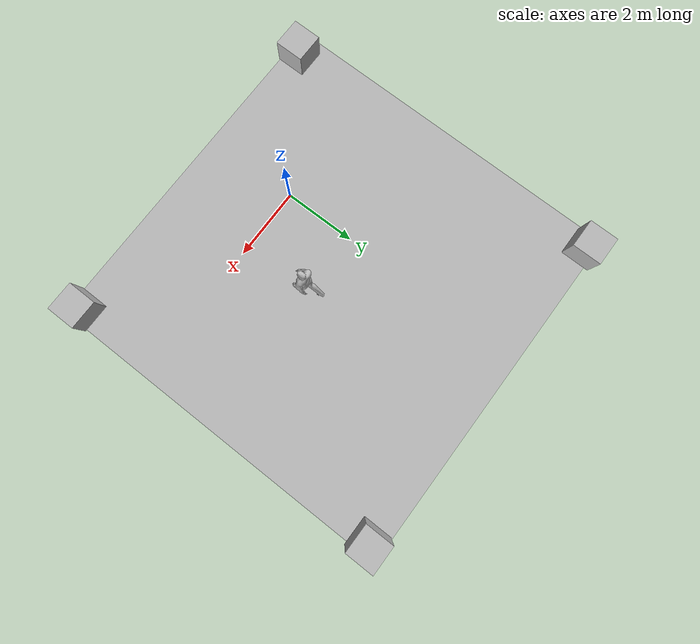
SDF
<sdf version="1.6">
 <world name="default">
  <scene>
   <ambient>0 0 0 1</ambient>
   <shadows>0</shadows>
   <grid>0</grid>
   <background>0.7 0.7 0.7 1</background>
  </scene>
  <light name="sun" type="directional">
   <pose>0 0 10 0 -0 0</pose>
   <diffuse>0.8 0.8 0.8 1</diffuse>
   <specular>0.2 0.2 0.2 1</specular>
   <attenuation>
    <range>1000</range>
    <constant>0.9</constant>
    <linear>0.01</linear>
    <quadratic>0.001</quadratic>
   </attenuation>
   <direction>-0.5 0.1 -0.9</direction>
  </light>
  <model name="ground">
   <pose>1 2.3 -0.1 0 -0 0</pose>
   <static>1</static>
   <link name="ground">
    <collision name="ground_coll"><geometry><box><size>10 10 0.1</size></box></geometry></collision>
    <visual name="ground_vis">
     <geometry><box><size>10 10 0.1</size></box></geometry>
     <material><script><uri>file://worlds/course.material</uri><name>course</name></script></material>
    </visual>
   </link>
  </model>
  <gravity>0 0 -9.8</gravity>
  <magnetic_field>6e-06 2.3e-05 -4.2e-05</magnetic_field>
  <atmosphere type="adiabatic"/>
  <physics name="default_physics" default="0" type="ode">
   <max_step_size>0.001</max_step_size>
   <real_time_factor>1</real_time_factor>
   <real_time_update_rate>1000</real_time_update_rate>
  </physics>
  <audio><device>default</device></audio>
  <spherical_coordinates>
   <surface_model>EARTH_WGS84</surface_model>
   <latitude_deg>0</latitude_deg>
   <longitude_deg>0</longitude_deg>
   <elevation>0</elevation>
   <heading_deg>0</heading_deg>
  </spherical_coordinates>
  <model name="person_walking">
   <link name="link">
    <inertial>
     <pose>0 0 0.95 0 -0 0</pose>
     <mass>80</mass>
     <inertia><ixx>27.82</ixx><ixy>0</ixy><ixz>0</ixz><iyy>24.88</iyy><iyz>0</iyz><izz>4.57</izz></inertia>
    </inertial>
    <collision name="bottom">
     <pose>0 0 0.01 0 -0 0</pose>
     <geometry><box><size>0.35 0.75 0.02</size></box></geometry>
    </collision>
    <collision name="person">
     <pose>0 0 -0.02 0 -0 0</pose>
     <geometry><mesh><uri>model://person_walking/meshes/walking.dae</uri></mesh></geometry>
    </collision>
    <visual name="visual">
     <pose>0 0 -0.02 0 -0 0</pose>
     <geometry><mesh><uri>model://person_walking/meshes/walking.dae</uri></mesh></geometry>
    </visual>
   </link>
   <pose>1.72501 1.91338 -0.050001 -2e-06 1e-06 0.003255</pose>
  </model>
  <model name="number1">
   <pose>-3.32796 -2.29764 0.4 0 -0 0</pose>
   <static>1</static>
   <link name="link">
    <visual name="visual">
     <geometry><mesh><uri>model://number1/meshes/number.dae</uri></mesh></geometry>
     <material>
      <script>
       <uri>model://number1/materials/scripts</uri>
       <uri>model://number1/materials/textures</uri>
       <name>Number/One</name>
      </script>
     </material>
    </visual>
   </link>
  </model>
  <model name="number2">
   <pose>5.63462 -2.31296 0.4 0 -0 0</pose>
   <static>1</static>
   <link name="link">
    <visual name="visual">
     <geometry><mesh><uri>model://number1/meshes/number.dae</uri></mesh></geometry>
     <material>
      <script>
       <uri>model://number2/materials/scripts</uri>
       <uri>model://number2/materials/textures</uri>
       <name>Number/Two</name>
      </script>
     </material>
    </visual>
   </link>
  </model>
  <model name="number3">
   <pose>5.6685 6.84131 0.4 0 -0 0</pose>
   <static>1</static>
   <link name="link">
    <visual name="visual">
     <geometry><mesh><uri>model://number1/meshes/number.dae</uri></mesh></geometry>
     <material>
      <script>
       <uri>model://number3/materials/scripts</uri>
       <uri>model://number3/materials/textures</uri>
       <name>Number/Three</name>
      </script>
     </material>
    </visual>
   </link>
  </model>
  <model name="number4">
   <pose>-3.5066 7.00099 0.4 0 -0 0</pose>
   <static>1</static>
   <link name="link">
    <visual name="visual">
     <geometry><mesh><uri>model://number1/meshes/number.dae</uri></mesh></geometry>
     <material>
      <script>
       <uri>model://number4/materials/scripts</uri>
       <uri>model://number4/materials/textures</uri>
       <name>Number/Four</name>
      </script>
     </material>
    </visual>
   </link>
  </model>
 </world>
</sdf>
